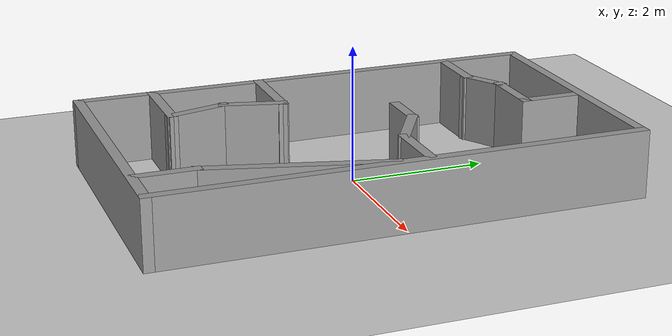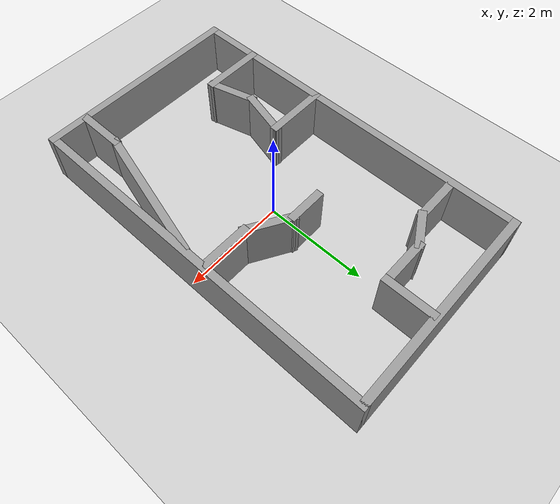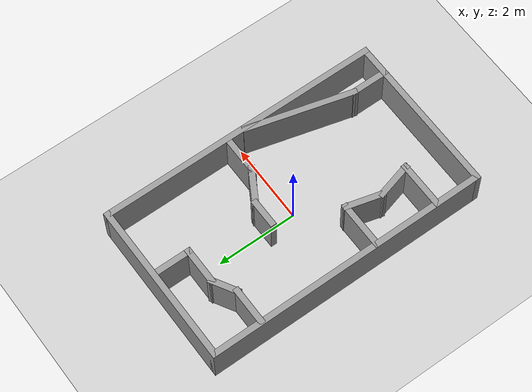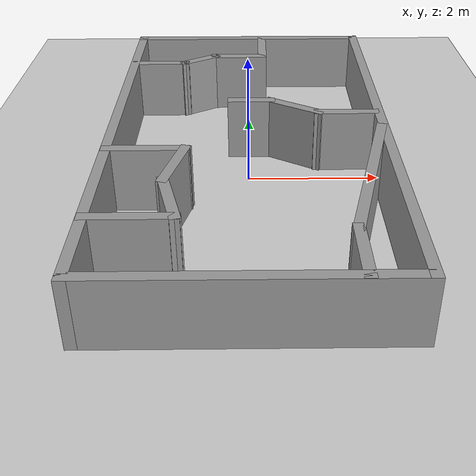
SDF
<sdf version="1.6">
 <world name="default">
  <light name="sun" type="directional">
   <pose>0 0 10 0 -0 0</pose>
   <diffuse>0.8 0.8 0.8 1</diffuse>
   <specular>0.1 0.1 0.1 1</specular>
   <attenuation>
    <range>1000</range>
    <constant>0.9</constant>
    <linear>0.01</linear>
    <quadratic>0.001</quadratic>
   </attenuation>
   <direction>-0.5 0.5 -1</direction>
  </light>
  <model name="ground_plane">
   <static>1</static>
   <link name="link">
    <collision name="collision">
     <geometry><plane><normal>0 0 1</normal><size>100 100</size></plane></geometry>
     <surface><friction><ode><mu>100</mu><mu2>50</mu2></ode></friction></surface>
    </collision>
    <visual name="visual">
     <cast_shadows>0</cast_shadows>
     <geometry><plane><normal>0 0 1</normal><size>100 100</size></plane></geometry>
     <material>
      <script><uri>file://media/materials/scripts/gazebo.material</uri><name>Gazebo/Grey</name></script>
     </material>
    </visual>
   </link>
  </model>
  <gravity>0 0 -9.8</gravity>
  <magnetic_field>6e-06 2.3e-05 -4.2e-05</magnetic_field>
  <atmosphere type="adiabatic"/>
  <physics name="default_physics" default="0" type="ode">
   <max_step_size>0.001</max_step_size>
   <real_time_factor>1</real_time_factor>
   <real_time_update_rate>1000</real_time_update_rate>
  </physics>
  <scene><ambient>0.4 0.4 0.4 1</ambient><background>0.7 0.7 0.7 1</background><shadows>1</shadows></scene>
  <spherical_coordinates>
   <surface_model>EARTH_WGS84</surface_model>
   <latitude_deg>0</latitude_deg>
   <longitude_deg>0</longitude_deg>
   <elevation>0</elevation>
   <heading_deg>0</heading_deg>
  </spherical_coordinates>
  <model name="Untitled">
   <link name="Wall_0">
    <collision name="Wall_0_Collision">
     <geometry><box><size>7.15 0.15 1</size></box></geometry>
     <pose>0 0 0.5 0 -0 0</pose>
    </collision>
    <visual name="Wall_0_Visual">
     <pose>0 0 0.5 0 -0 0</pose>
     <geometry><box><size>7.15 0.15 1</size></box></geometry>
     <material>
      <script><uri>file://media/materials/scripts/gazebo.material</uri><name>Gazebo/Grey</name></script>
      <ambient>1 1 1 1</ambient>
     </material>
    </visual>
    <pose>2 0 0 0 0 -1.5708</pose>
   </link>
   <link name="Wall_1">
    <collision name="Wall_1_Collision">
     <geometry><box><size>4.15 0.15 1</size></box></geometry>
     <pose>0 0 0.5 0 -0 0</pose>
    </collision>
    <visual name="Wall_1_Visual">
     <pose>0 0 0.5 0 -0 0</pose>
     <geometry><box><size>4.15 0.15 1</size></box></geometry>
     <material>
      <script><uri>file://media/materials/scripts/gazebo.material</uri><name>Gazebo/Grey</name></script>
      <ambient>1 1 1 1</ambient>
     </material>
    </visual>
    <pose>0 -3.5 0 0 -0 3.14159</pose>
   </link>
   <link name="Wall_10">
    <collision name="Wall_10_Collision">
     <geometry><box><size>0.75 0.15 1</size></box></geometry>
     <pose>0 0 0.5 0 -0 0</pose>
    </collision>
    <visual name="Wall_10_Visual">
     <pose>0 0 0.5 0 -0 0</pose>
     <geometry><box><size>0.75 0.15 1</size></box></geometry>
     <material>
      <script><uri>file://media/materials/scripts/gazebo.material</uri><name>Gazebo/Grey</name></script>
      <ambient>1 1 1 1</ambient>
     </material>
    </visual>
    <pose>0.044 0.765 0 0 -0 0</pose>
   </link>
   <link name="Wall_11">
    <collision name="Wall_11_Collision">
     <geometry><box><size>1 0.15 1</size></box></geometry>
     <pose>0 0 0.5 0 -0 0</pose>
    </collision>
    <visual name="Wall_11_Visual">
     <pose>0 0 0.5 0 -0 0</pose>
     <geometry><box><size>1 0.15 1</size></box></geometry>
     <material>
      <script><uri>file://media/materials/scripts/gazebo.material</uri><name>Gazebo/Grey</name></script>
      <ambient>1 1 1 1</ambient>
     </material>
    </visual>
    <pose>0.712 0.5525 0 0 0 -0.52367</pose>
   </link>
   <link name="Wall_12">
    <collision name="Wall_12_Collision">
     <geometry><box><size>1 0.15 1</size></box></geometry>
     <pose>0 0 0.5 0 -0 0</pose>
    </collision>
    <visual name="Wall_12_Visual">
     <pose>0 0 0.5 0 -0 0</pose>
     <geometry><box><size>1 0.15 1</size></box></geometry>
     <material>
      <script><uri>file://media/materials/scripts/gazebo.material</uri><name>Gazebo/Grey</name></script>
      <ambient>1 1 1 1</ambient>
     </material>
    </visual>
    <pose>1.505 0.34 0 0 -0 0</pose>
   </link>
   <link name="Wall_14">
    <collision name="Wall_14_Collision">
     <geometry><box><size>1 0.15 1</size></box></geometry>
     <pose>0 0 0.5 0 -0 0</pose>
    </collision>
    <visual name="Wall_14_Visual">
     <pose>0 0 0.5 0 -0 0</pose>
     <geometry><box><size>1 0.15 1</size></box></geometry>
     <material>
      <script><uri>file://media/materials/scripts/gazebo.material</uri><name>Gazebo/Grey</name></script>
      <ambient>1 1 1 1</ambient>
     </material>
    </visual>
    <pose>-0.177 2.591 0 0 -0 3.14159</pose>
   </link>
   <link name="Wall_15">
    <collision name="Wall_15_Collision">
     <geometry><box><size>0.75 0.15 1</size></box></geometry>
     <pose>0 0 0.5 0 -0 0</pose>
    </collision>
    <visual name="Wall_15_Visual">
     <pose>0 0 0.5 0 -0 0</pose>
     <geometry><box><size>0.75 0.15 1</size></box></geometry>
     <material>
      <script><uri>file://media/materials/scripts/gazebo.material</uri><name>Gazebo/Grey</name></script>
      <ambient>1 1 1 1</ambient>
     </material>
    </visual>
    <pose>-0.8615 2.441 0 0 0 -2.61748</pose>
   </link>
   <link name="Wall_16">
    <collision name="Wall_16_Collision">
     <geometry><box><size>1 0.15 1</size></box></geometry>
     <pose>0 0 0.5 0 -0 0</pose>
    </collision>
    <visual name="Wall_16_Visual">
     <pose>0 0 0.5 0 -0 0</pose>
     <geometry><box><size>1 0.15 1</size></box></geometry>
     <material>
      <script><uri>file://media/materials/scripts/gazebo.material</uri><name>Gazebo/Grey</name></script>
      <ambient>1 1 1 1</ambient>
     </material>
    </visual>
    <pose>-1.546 2.291 0 0 -0 3.14159</pose>
   </link>
   <link name="Wall_18">
    <collision name="Wall_18_Collision">
     <geometry><box><size>1 0.15 1</size></box></geometry>
     <pose>0 0 0.5 0 -0 0</pose>
    </collision>
    <visual name="Wall_18_Visual">
     <pose>0 0 0.5 0 -0 0</pose>
     <geometry><box><size>1 0.15 1</size></box></geometry>
     <material>
      <script><uri>file://media/materials/scripts/gazebo.material</uri><name>Gazebo/Grey</name></script>
      <ambient>1 1 1 1</ambient>
     </material>
    </visual>
    <pose>0.248 3.016 0 0 -0 1.5708</pose>
   </link>
   <link name="Wall_2">
    <collision name="Wall_2_Collision">
     <geometry><box><size>7.15 0.15 1</size></box></geometry>
     <pose>0 0 0.5 0 -0 0</pose>
    </collision>
    <visual name="Wall_2_Visual">
     <pose>0 0 0.5 0 -0 0</pose>
     <geometry><box><size>7.15 0.15 1</size></box></geometry>
     <material>
      <script><uri>file://media/materials/scripts/gazebo.material</uri><name>Gazebo/Grey</name></script>
      <ambient>1 1 1 1</ambient>
     </material>
    </visual>
    <pose>-2 0 0 0 -0 1.5708</pose>
   </link>
   <link name="Wall_20">
    <collision name="Wall_20_Collision">
     <geometry><box><size>1 0.15 1</size></box></geometry>
     <pose>0 0 0.5 0 -0 0</pose>
    </collision>
    <visual name="Wall_20_Visual">
     <pose>0 0 0.5 0 -0 0</pose>
     <geometry><box><size>1 0.15 1</size></box></geometry>
     <material>
      <script><uri>file://media/materials/scripts/gazebo.material</uri><name>Gazebo/Grey</name></script>
      <ambient>1 1 1 1</ambient>
     </material>
    </visual>
    <pose>1.292 -3.071 0 0 -0 1.5708</pose>
   </link>
   <link name="Wall_21">
    <collision name="Wall_21_Collision">
     <geometry><box><size>2.75 0.15 1</size></box></geometry>
     <pose>0 0 0.5 0 -0 0</pose>
    </collision>
    <visual name="Wall_21_Visual">
     <pose>0 0 0.5 0 -0 0</pose>
     <geometry><box><size>2.75 0.15 1</size></box></geometry>
     <material>
      <script><uri>file://media/materials/scripts/gazebo.material</uri><name>Gazebo/Grey</name></script>
      <ambient>1 1 1 1</ambient>
     </material>
    </visual>
    <pose>1.6285 -1.39 0 0 -0 1.30903</pose>
   </link>
   <link name="Wall_3">
    <collision name="Wall_3_Collision">
     <geometry><box><size>4.15 0.15 1</size></box></geometry>
     <pose>0 0 0.5 0 -0 0</pose>
    </collision>
    <visual name="Wall_3_Visual">
     <pose>0 0 0.5 0 -0 0</pose>
     <geometry><box><size>4.15 0.15 1</size></box></geometry>
     <material>
      <script><uri>file://media/materials/scripts/gazebo.material</uri><name>Gazebo/Grey</name></script>
      <ambient>1 1 1 1</ambient>
     </material>
    </visual>
    <pose>0 3.5 0 0 -0 0</pose>
   </link>
   <link name="Wall_5">
    <collision name="Wall_5_Collision">
     <geometry><box><size>1.25 0.15 1</size></box></geometry>
     <pose>0 0 0.5 0 -0 0</pose>
    </collision>
    <visual name="Wall_5_Visual">
     <pose>0 0 0.5 0 -0 0</pose>
     <geometry><box><size>1.25 0.15 1</size></box></geometry>
     <material>
      <script><uri>file://media/materials/scripts/gazebo.material</uri><name>Gazebo/Grey</name></script>
      <ambient>1 1 1 1</ambient>
     </material>
    </visual>
    <pose>-1.445 -2.4 0 0 -0 0</pose>
   </link>
   <link name="Wall_6">
    <collision name="Wall_6_Collision">
     <geometry><box><size>1 0.15 1</size></box></geometry>
     <pose>0 0 0.5 0 -0 0</pose>
    </collision>
    <visual name="Wall_6_Visual">
     <pose>0 0 0.5 0 -0 0</pose>
     <geometry><box><size>1 0.15 1</size></box></geometry>
     <material>
      <script><uri>file://media/materials/scripts/gazebo.material</uri><name>Gazebo/Grey</name></script>
      <ambient>1 1 1 1</ambient>
     </material>
    </visual>
    <pose>-1.005 -1.9895 0 0 -0 1.83261</pose>
   </link>
   <link name="Wall_7">
    <collision name="Wall_7_Collision">
     <geometry><box><size>1 0.15 1</size></box></geometry>
     <pose>0 0 0.5 0 -0 0</pose>
    </collision>
    <visual name="Wall_7_Visual">
     <pose>0 0 0.5 0 -0 0</pose>
     <geometry><box><size>1 0.15 1</size></box></geometry>
     <material>
      <script><uri>file://media/materials/scripts/gazebo.material</uri><name>Gazebo/Grey</name></script>
      <ambient>1 1 1 1</ambient>
     </material>
    </visual>
    <pose>-1.005 -1.1685 0 0 -0 1.30898</pose>
   </link>
   <link name="Wall_8">
    <collision name="Wall_8_Collision">
     <geometry><box><size>1.25 0.15 1</size></box></geometry>
     <pose>0 0 0.5 0 -0 0</pose>
    </collision>
    <visual name="Wall_8_Visual">
     <pose>0 0 0.5 0 -0 0</pose>
     <geometry><box><size>1.25 0.15 1</size></box></geometry>
     <material>
      <script><uri>file://media/materials/scripts/gazebo.material</uri><name>Gazebo/Grey</name></script>
      <ambient>1 1 1 1</ambient>
     </material>
    </visual>
    <pose>-1.445 -0.758 0 0 -0 3.14159</pose>
   </link>
   <static>1</static>
  </model>
 </world>
</sdf>
